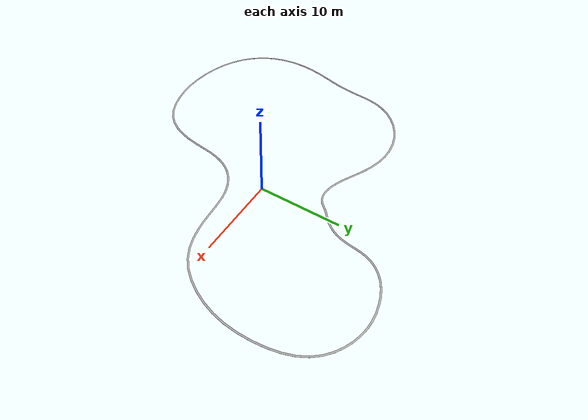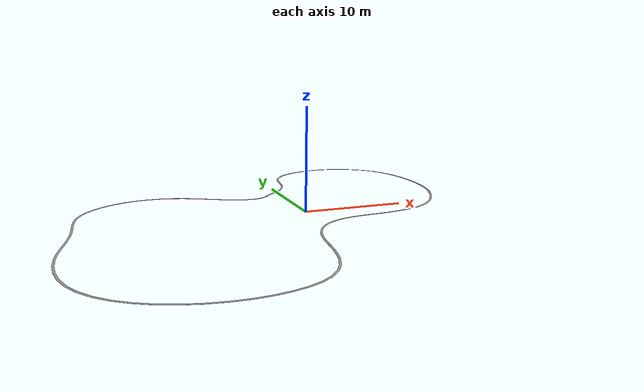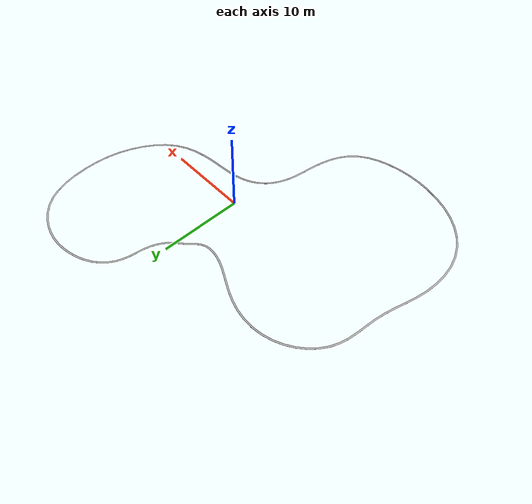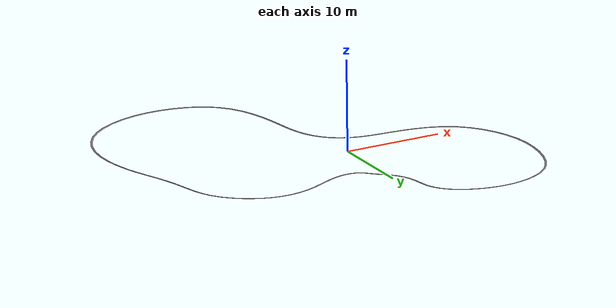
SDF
<?xml version="1.0"?>
<sdf version="1.5">
    <model name="road">
        <static>true</static>
        <link name="link">
            <collision name="collision">
                <pose>0 0 0 0 0 0</pose>
                <geometry>
                    <mesh>
                        <uri>model://road_2/meshes/road_2.dae</uri>
                    </mesh>
                </geometry>
            </collision>
            <visual name="visual">

              <pose>0 0 0 0 0 0</pose>
              <geometry>
              <mesh>
                 <uri>model://road_2/meshes/road_2.dae</uri>
              </mesh>
              </geometry>

              <material>
                  <script>
                      <uri>model://road_2/materials/scripts</uri>
                      <uri>model://road_2/materials/textures</uri>
                      <name>roadMat/Diffuse</name>
                  </script>
              </material>
             </visual>

        </link>
    </model>
</sdf>
